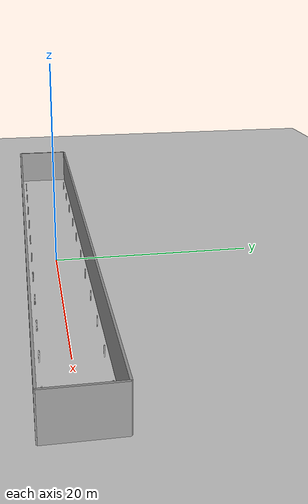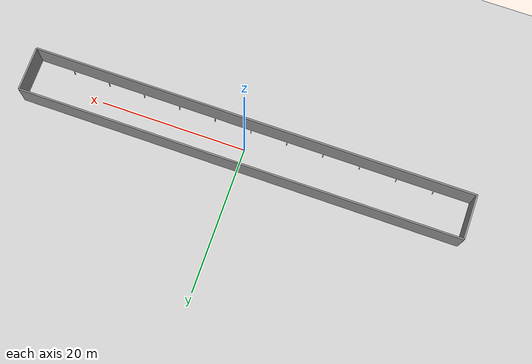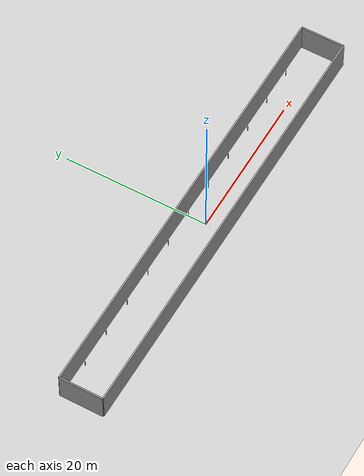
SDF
<?xml version="1.0" ?>
<sdf version="1.6">
  <world name="default">
    <include>
      <uri>model://sun</uri>
    </include>
    <include>
      <uri>model://ground_plane</uri>
    </include>

    <!-- ================= 隧道墙壁 (长60m, 宽6m) ================= -->
    <model name="tunnel_walls">
      <static>true</static>
      <link name="link">
        <!-- 左墙 (y=3) -->
        <visual name="wall_left">
          <pose>0 3 2.0 0 0 0</pose>
          <geometry><box><size>60.0 0.2 4.0</size></box></geometry>
          <material><script><name>Gazebo/Grey</name></script></material>
        </visual>
        <collision name="col_left">
          <pose>0 3 2.0 0 0 0</pose>
          <geometry><box><size>60.0 0.2 4.0</size></box></geometry>
        </collision>

        <!-- 右墙 (y=-3) -->
        <visual name="wall_right">
          <pose>0 -3 2.0 0 0 0</pose>
          <geometry><box><size>60.0 0.2 4.0</size></box></geometry>
          <material><script><name>Gazebo/Grey</name></script></material>
        </visual>
        <collision name="col_right">
          <pose>0 -3 2.0 0 0 0</pose>
          <geometry><box><size>60.0 0.2 4.0</size></box></geometry>
        </collision>

        <!-- 封顶 (可选，为了采光好暂时不封顶，或者只封尽头) -->
        <!-- 前端封口 -->
        <visual name="wall_front">
          <pose>30 0 2.0 0 0 0</pose>
          <geometry><box><size>0.2 6.0 4.0</size></box></geometry>
          <material><script><name>Gazebo/Grey</name></script></material>
        </visual>
        <collision name="col_front">
          <pose>30 0 2.0 0 0 0</pose>
          <geometry><box><size>0.2 6.0 4.0</size></box></geometry>
        </collision>

        <!-- 后端封口 -->
        <visual name="wall_back">
          <pose>-30 0 2.0 0 0 0</pose>
          <geometry><box><size>0.2 6.0 4.0</size></box></geometry>
          <material><script><name>Gazebo/Grey</name></script></material>
        </visual>
        <collision name="col_back">
          <pose>-30 0 2.0 0 0 0</pose>
          <geometry><box><size>0.2 6.0 4.0</size></box></geometry>
        </collision>
      </link>
    </model>

    <!-- ================= 反光柱生成 (每5米一个) ================= -->
    <!-- 由于 SDF 不支持循环语法，这里列举位置：从 -25 到 +25 -->
    <!-- 坐标 X: -25, -20, -15, -10, -5, 0, 5, 10, 15, 20, 25 -->
    <!-- 左右两侧 Y: +/- 2.5 (离墙0.5米) -->

    <!-- 定义一个宏模板不太方便，直接用多个Model，为了代码整洁，这里列举主要的部分 -->

    <!-- 1. 左侧反光柱列 -->
    <model name="poles_left">
      <static>true</static>
      <link name="link">
        <!-- 视觉与碰撞定义 -->
        <!-- 为了节省代码行数，我们将所有柱子放在一个 Link 里，利用 pose 偏移 -->

        <visual name="v_lp_1"><pose>-25 2.5 0.5 0 0 0</pose><geometry><cylinder><radius>0.05</radius><length>1</length></cylinder></geometry><material><script><name>Gazebo/White</name></script></material></visual>
        <collision name="c_lp_1"><pose>-25 2.5 0.5 0 0 0</pose><geometry><cylinder><radius>0.05</radius><length>1</length></cylinder></geometry><laser_retro>200</laser_retro></collision>

        <visual name="v_lp_2"><pose>-20 2.5 0.5 0 0 0</pose><geometry><cylinder><radius>0.05</radius><length>1</length></cylinder></geometry><material><script><name>Gazebo/White</name></script></material></visual>
        <collision name="c_lp_2"><pose>-20 2.5 0.5 0 0 0</pose><geometry><cylinder><radius>0.05</radius><length>1</length></cylinder></geometry><laser_retro>200</laser_retro></collision>

        <visual name="v_lp_3"><pose>-15 2.5 0.5 0 0 0</pose><geometry><cylinder><radius>0.05</radius><length>1</length></cylinder></geometry><material><script><name>Gazebo/White</name></script></material></visual>
        <collision name="c_lp_3"><pose>-15 2.5 0.5 0 0 0</pose><geometry><cylinder><radius>0.05</radius><length>1</length></cylinder></geometry><laser_retro>200</laser_retro></collision>

        <visual name="v_lp_4"><pose>-10 2.5 0.5 0 0 0</pose><geometry><cylinder><radius>0.05</radius><length>1</length></cylinder></geometry><material><script><name>Gazebo/White</name></script></material></visual>
        <collision name="c_lp_4"><pose>-10 2.5 0.5 0 0 0</pose><geometry><cylinder><radius>0.05</radius><length>1</length></cylinder></geometry><laser_retro>200</laser_retro></collision>

        <visual name="v_lp_5"><pose>-5 2.5 0.5 0 0 0</pose><geometry><cylinder><radius>0.05</radius><length>1</length></cylinder></geometry><material><script><name>Gazebo/White</name></script></material></visual>
        <collision name="c_lp_5"><pose>-5 2.5 0.5 0 0 0</pose><geometry><cylinder><radius>0.05</radius><length>1</length></cylinder></geometry><laser_retro>200</laser_retro></collision>

        <visual name="v_lp_6"><pose>0 2.5 0.5 0 0 0</pose><geometry><cylinder><radius>0.05</radius><length>1</length></cylinder></geometry><material><script><name>Gazebo/White</name></script></material></visual>
        <collision name="c_lp_6"><pose>0 2.5 0.5 0 0 0</pose><geometry><cylinder><radius>0.05</radius><length>1</length></cylinder></geometry><laser_retro>200</laser_retro></collision>

        <visual name="v_lp_7"><pose>5 2.5 0.5 0 0 0</pose><geometry><cylinder><radius>0.05</radius><length>1</length></cylinder></geometry><material><script><name>Gazebo/White</name></script></material></visual>
        <collision name="c_lp_7"><pose>5 2.5 0.5 0 0 0</pose><geometry><cylinder><radius>0.05</radius><length>1</length></cylinder></geometry><laser_retro>200</laser_retro></collision>

        <visual name="v_lp_8"><pose>10 2.5 0.5 0 0 0</pose><geometry><cylinder><radius>0.05</radius><length>1</length></cylinder></geometry><material><script><name>Gazebo/White</name></script></material></visual>
        <collision name="c_lp_8"><pose>10 2.5 0.5 0 0 0</pose><geometry><cylinder><radius>0.05</radius><length>1</length></cylinder></geometry><laser_retro>200</laser_retro></collision>

        <visual name="v_lp_9"><pose>15 2.5 0.5 0 0 0</pose><geometry><cylinder><radius>0.05</radius><length>1</length></cylinder></geometry><material><script><name>Gazebo/White</name></script></material></visual>
        <collision name="c_lp_9"><pose>15 2.5 0.5 0 0 0</pose><geometry><cylinder><radius>0.05</radius><length>1</length></cylinder></geometry><laser_retro>200</laser_retro></collision>

        <visual name="v_lp_10"><pose>20 2.5 0.5 0 0 0</pose><geometry><cylinder><radius>0.05</radius><length>1</length></cylinder></geometry><material><script><name>Gazebo/White</name></script></material></visual>
        <collision name="c_lp_10"><pose>20 2.5 0.5 0 0 0</pose><geometry><cylinder><radius>0.05</radius><length>1</length></cylinder></geometry><laser_retro>200</laser_retro></collision>

        <visual name="v_lp_11"><pose>25 2.5 0.5 0 0 0</pose><geometry><cylinder><radius>0.05</radius><length>1</length></cylinder></geometry><material><script><name>Gazebo/White</name></script></material></visual>
        <collision name="c_lp_11"><pose>25 2.5 0.5 0 0 0</pose><geometry><cylinder><radius>0.05</radius><length>1</length></cylinder></geometry><laser_retro>200</laser_retro></collision>
      </link>
    </model>

    <!-- 2. 右侧反光柱列 (位置 y = -2.5) -->
    <model name="poles_right">
      <static>true</static>
      <link name="link">
        <visual name="v_rp_1"><pose>-25 -2.5 0.5 0 0 0</pose><geometry><cylinder><radius>0.05</radius><length>1</length></cylinder></geometry><material><script><name>Gazebo/White</name></script></material></visual>
        <collision name="c_rp_1"><pose>-25 -2.5 0.5 0 0 0</pose><geometry><cylinder><radius>0.05</radius><length>1</length></cylinder></geometry><laser_retro>200</laser_retro></collision>

        <visual name="v_rp_2"><pose>-20 -2.5 0.5 0 0 0</pose><geometry><cylinder><radius>0.05</radius><length>1</length></cylinder></geometry><material><script><name>Gazebo/White</name></script></material></visual>
        <collision name="c_rp_2"><pose>-20 -2.5 0.5 0 0 0</pose><geometry><cylinder><radius>0.05</radius><length>1</length></cylinder></geometry><laser_retro>200</laser_retro></collision>

        <visual name="v_rp_3"><pose>-15 -2.5 0.5 0 0 0</pose><geometry><cylinder><radius>0.05</radius><length>1</length></cylinder></geometry><material><script><name>Gazebo/White</name></script></material></visual>
        <collision name="c_rp_3"><pose>-15 -2.5 0.5 0 0 0</pose><geometry><cylinder><radius>0.05</radius><length>1</length></cylinder></geometry><laser_retro>200</laser_retro></collision>

        <visual name="v_rp_4"><pose>-10 -2.5 0.5 0 0 0</pose><geometry><cylinder><radius>0.05</radius><length>1</length></cylinder></geometry><material><script><name>Gazebo/White</name></script></material></visual>
        <collision name="c_rp_4"><pose>-10 -2.5 0.5 0 0 0</pose><geometry><cylinder><radius>0.05</radius><length>1</length></cylinder></geometry><laser_retro>200</laser_retro></collision>

        <visual name="v_rp_5"><pose>-5 -2.5 0.5 0 0 0</pose><geometry><cylinder><radius>0.05</radius><length>1</length></cylinder></geometry><material><script><name>Gazebo/White</name></script></material></visual>
        <collision name="c_rp_5"><pose>-5 -2.5 0.5 0 0 0</pose><geometry><cylinder><radius>0.05</radius><length>1</length></cylinder></geometry><laser_retro>200</laser_retro></collision>

        <visual name="v_rp_6"><pose>0 -2.5 0.5 0 0 0</pose><geometry><cylinder><radius>0.05</radius><length>1</length></cylinder></geometry><material><script><name>Gazebo/White</name></script></material></visual>
        <collision name="c_rp_6"><pose>0 -2.5 0.5 0 0 0</pose><geometry><cylinder><radius>0.05</radius><length>1</length></cylinder></geometry><laser_retro>200</laser_retro></collision>

        <visual name="v_rp_7"><pose>5 -2.5 0.5 0 0 0</pose><geometry><cylinder><radius>0.05</radius><length>1</length></cylinder></geometry><material><script><name>Gazebo/White</name></script></material></visual>
        <collision name="c_rp_7"><pose>5 -2.5 0.5 0 0 0</pose><geometry><cylinder><radius>0.05</radius><length>1</length></cylinder></geometry><laser_retro>200</laser_retro></collision>

        <visual name="v_rp_8"><pose>10 -2.5 0.5 0 0 0</pose><geometry><cylinder><radius>0.05</radius><length>1</length></cylinder></geometry><material><script><name>Gazebo/White</name></script></material></visual>
        <collision name="c_rp_8"><pose>10 -2.5 0.5 0 0 0</pose><geometry><cylinder><radius>0.05</radius><length>1</length></cylinder></geometry><laser_retro>200</laser_retro></collision>

        <visual name="v_rp_9"><pose>15 -2.5 0.5 0 0 0</pose><geometry><cylinder><radius>0.05</radius><length>1</length></cylinder></geometry><material><script><name>Gazebo/White</name></script></material></visual>
        <collision name="c_rp_9"><pose>15 -2.5 0.5 0 0 0</pose><geometry><cylinder><radius>0.05</radius><length>1</length></cylinder></geometry><laser_retro>200</laser_retro></collision>

        <visual name="v_rp_10"><pose>20 -2.5 0.5 0 0 0</pose><geometry><cylinder><radius>0.05</radius><length>1</length></cylinder></geometry><material><script><name>Gazebo/White</name></script></material></visual>
        <collision name="c_rp_10"><pose>20 -2.5 0.5 0 0 0</pose><geometry><cylinder><radius>0.05</radius><length>1</length></cylinder></geometry><laser_retro>200</laser_retro></collision>

        <visual name="v_rp_11"><pose>25 -2.5 0.5 0 0 0</pose><geometry><cylinder><radius>0.05</radius><length>1</length></cylinder></geometry><material><script><name>Gazebo/White</name></script></material></visual>
        <collision name="c_rp_11"><pose>25 -2.5 0.5 0 0 0</pose><geometry><cylinder><radius>0.05</radius><length>1</length></cylinder></geometry><laser_retro>200</laser_retro></collision>
      </link>
    </model>

  </world>
</sdf>
